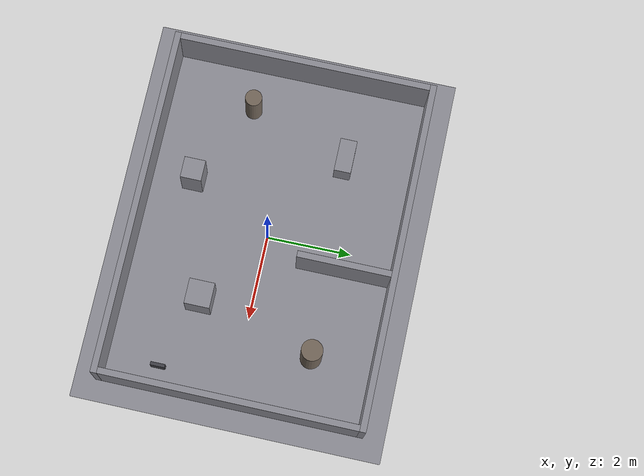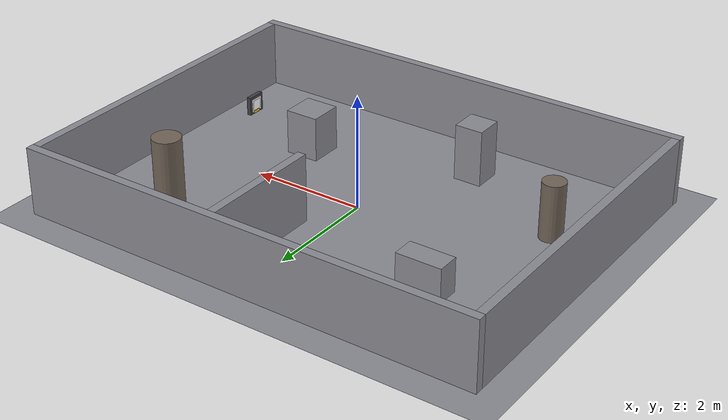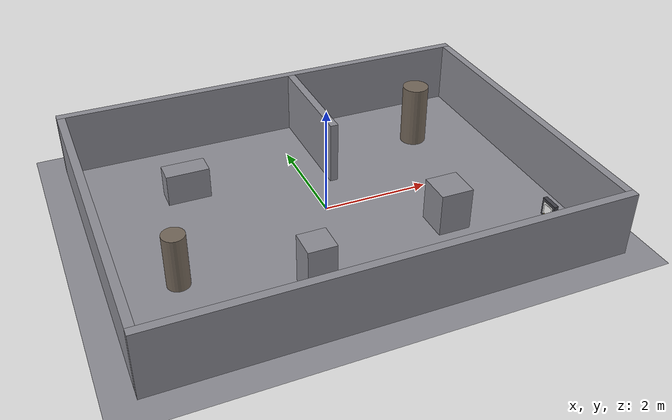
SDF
<?xml version="1.0" ?>
<sdf version="1.6">
  <world name="room_world">

    <light name="sun" type="directional">
      <cast_shadows>true</cast_shadows>
      <pose>0 0 10 0 0 0</pose>
      <diffuse>0.9 0.9 0.9 1</diffuse>
      <specular>0.2 0.2 0.2 1</specular>
      <attenuation><range>1000</range><constant>0.9</constant><linear>0.01</linear><quadratic>0.001</quadratic></attenuation>
      <direction>-0.4 0.3 -0.9</direction>
    </light>

    <model name="ground_plane">
      <static>true</static>
      <link name="link">
        <collision name="collision">
          <geometry><plane><normal>0 0 1</normal><size>100 100</size></plane></geometry>
          <surface>
            <friction><ode><mu>1.0</mu><mu2>1.0</mu2></ode></friction>
            <contact><ode><kp>1e6</kp><kd>100</kd><max_vel>0.1</max_vel><min_depth>0.001</min_depth></ode></contact>
          </surface>
        </collision>
        <visual name="visual">
          <cast_shadows>false</cast_shadows>
          <geometry><plane><normal>0 0 1</normal><size>100 100</size></plane></geometry>
          <material><ambient>0.35 0.35 0.38 1</ambient><diffuse>0.55 0.55 0.58 1</diffuse></material>
        </visual>
      </link>
    </model>

    <model name="wall_north">
      <static>true</static>
      <link name="link">
        <pose>0.0000 3.0750 0.6000 0 0 0</pose>
        <collision name="collision">
          <geometry><box><size>8.3000 0.1500 1.2000</size></box></geometry>
          <surface><friction><ode><mu>0.8</mu><mu2>0.8</mu2></ode></friction></surface>
        </collision>
        <visual name="visual">
          <geometry><box><size>8.3000 0.1500 1.2000</size></box></geometry>
          <material>
            <ambient>0.28 0.28 0.29 1</ambient>
            <diffuse>0.55 0.55 0.58 1</diffuse>
          </material>
        </visual>
      </link>
    </model>
    <model name="wall_south">
      <static>true</static>
      <link name="link">
        <pose>0.0000 -3.0750 0.6000 0 0 0</pose>
        <collision name="collision">
          <geometry><box><size>8.3000 0.1500 1.2000</size></box></geometry>
          <surface><friction><ode><mu>0.8</mu><mu2>0.8</mu2></ode></friction></surface>
        </collision>
        <visual name="visual">
          <geometry><box><size>8.3000 0.1500 1.2000</size></box></geometry>
          <material>
            <ambient>0.28 0.28 0.29 1</ambient>
            <diffuse>0.55 0.55 0.58 1</diffuse>
          </material>
        </visual>
      </link>
    </model>
    <model name="wall_east">
      <static>true</static>
      <link name="link">
        <pose>4.0750 0.0000 0.6000 0 0 0</pose>
        <collision name="collision">
          <geometry><box><size>0.1500 6.0000 1.2000</size></box></geometry>
          <surface><friction><ode><mu>0.8</mu><mu2>0.8</mu2></ode></friction></surface>
        </collision>
        <visual name="visual">
          <geometry><box><size>0.1500 6.0000 1.2000</size></box></geometry>
          <material>
            <ambient>0.28 0.28 0.29 1</ambient>
            <diffuse>0.55 0.55 0.58 1</diffuse>
          </material>
        </visual>
      </link>
    </model>
    <model name="wall_west">
      <static>true</static>
      <link name="link">
        <pose>-4.0750 0.0000 0.6000 0 0 0</pose>
        <collision name="collision">
          <geometry><box><size>0.1500 6.0000 1.2000</size></box></geometry>
          <surface><friction><ode><mu>0.8</mu><mu2>0.8</mu2></ode></friction></surface>
        </collision>
        <visual name="visual">
          <geometry><box><size>0.1500 6.0000 1.2000</size></box></geometry>
          <material>
            <ambient>0.28 0.28 0.29 1</ambient>
            <diffuse>0.55 0.55 0.58 1</diffuse>
          </material>
        </visual>
      </link>
    </model>
    <model name="partition">
      <static>true</static>
      <link name="link">
        <pose>0.5000 1.9000 0.6000 0 0 0</pose>
        <collision name="collision">
          <geometry><box><size>0.1500 2.2000 1.2000</size></box></geometry>
          <surface><friction><ode><mu>0.8</mu><mu2>0.8</mu2></ode></friction></surface>
        </collision>
        <visual name="visual">
          <geometry><box><size>0.1500 2.2000 1.2000</size></box></geometry>
          <material>
            <ambient>0.28 0.28 0.29 1</ambient>
            <diffuse>0.55 0.55 0.58 1</diffuse>
          </material>
        </visual>
      </link>
    </model>
    <model name="crate_a">
      <static>true</static>
      <link name="link">
        <pose>1.8000 -1.2000 0.4000 0 0 0</pose>
        <collision name="collision">
          <geometry><box><size>0.6000 0.6000 0.8000</size></box></geometry>
          <surface><friction><ode><mu>0.8</mu><mu2>0.8</mu2></ode></friction></surface>
        </collision>
        <visual name="visual">
          <geometry><box><size>0.6000 0.6000 0.8000</size></box></geometry>
          <material>
            <ambient>0.28 0.28 0.29 1</ambient>
            <diffuse>0.55 0.55 0.58 1</diffuse>
          </material>
        </visual>
      </link>
    </model>
    <model name="crate_b">
      <static>true</static>
      <link name="link">
        <pose>-2.2000 1.4000 0.3000 0 0 0</pose>
        <collision name="collision">
          <geometry><box><size>0.8000 0.4000 0.6000</size></box></geometry>
          <surface><friction><ode><mu>0.8</mu><mu2>0.8</mu2></ode></friction></surface>
        </collision>
        <visual name="visual">
          <geometry><box><size>0.8000 0.4000 0.6000</size></box></geometry>
          <material>
            <ambient>0.28 0.28 0.29 1</ambient>
            <diffuse>0.55 0.55 0.58 1</diffuse>
          </material>
        </visual>
      </link>
    </model>
    <model name="crate_c">
      <static>true</static>
      <link name="link">
        <pose>-1.0000 -2.0000 0.5000 0 0 0</pose>
        <collision name="collision">
          <geometry><box><size>0.5000 0.5000 1.0000</size></box></geometry>
          <surface><friction><ode><mu>0.8</mu><mu2>0.8</mu2></ode></friction></surface>
        </collision>
        <visual name="visual">
          <geometry><box><size>0.5000 0.5000 1.0000</size></box></geometry>
          <material>
            <ambient>0.28 0.28 0.29 1</ambient>
            <diffuse>0.55 0.55 0.58 1</diffuse>
          </material>
        </visual>
      </link>
    </model>
    <model name="pillar_a">
      <static>true</static>
      <link name="link">
        <pose>2.6000 1.6000 0.6000 0 0 0</pose>
        <collision name="collision">
          <geometry><cylinder><radius>0.2500</radius><length>1.2000</length></cylinder></geometry>
        </collision>
        <visual name="visual">
          <geometry><cylinder><radius>0.2500</radius><length>1.2000</length></cylinder></geometry>
          <material>
            <ambient>0.23 0.20 0.17 1</ambient>
            <diffuse>0.45 0.40 0.35 1</diffuse>
          </material>
        </visual>
      </link>
    </model>
    <model name="pillar_b">
      <static>true</static>
      <link name="link">
        <pose>-3.0000 -1.0000 0.5000 0 0 0</pose>
        <collision name="collision">
          <geometry><cylinder><radius>0.2000</radius><length>1.0000</length></cylinder></geometry>
        </collision>
        <visual name="visual">
          <geometry><cylinder><radius>0.2000</radius><length>1.0000</length></cylinder></geometry>
          <material>
            <ambient>0.23 0.20 0.17 1</ambient>
            <diffuse>0.45 0.40 0.35 1</diffuse>
          </material>
        </visual>
      </link>
    </model>

    <include>
      <uri>model://aruco_dock_station</uri>
      <name>docking_station</name>
      <pose>3.5500 -1.8000 0.0000 0.0000 0.0000 3.1416</pose>
    </include>

    <plugin name="gazebo_ros_state" filename="libgazebo_ros_state.so">
      <ros><namespace>/gazebo</namespace></ros>
      <update_rate>20.0</update_rate>
    </plugin>

    <scene>
      <ambient>0.5 0.5 0.5 1</ambient>
      <background>0.7 0.75 0.8 1</background>
      <shadows>true</shadows>
    </scene>

    <physics type="ode">
      <max_step_size>0.001</max_step_size>
      <real_time_factor>1</real_time_factor>
      <real_time_update_rate>1000</real_time_update_rate>
      <ode>
        <solver><type>quick</type><iters>75</iters><sor>1.3</sor></solver>
        <constraints>
          <cfm>0.0</cfm><erp>0.2</erp>
          <contact_max_correcting_vel>100.0</contact_max_correcting_vel>
          <contact_surface_layer>0.001</contact_surface_layer>
        </constraints>
      </ode>
    </physics>

    <gui fullscreen='0'>
      <camera name='user_camera'>
        <pose>-6.5 -6.0 6.0 0 0.62 0.75</pose>
        <view_controller>orbit</view_controller>
      </camera>
    </gui>
  </world>
</sdf>

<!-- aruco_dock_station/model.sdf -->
<sdf version="1.6">
  <model name="aruco_dock_station">
    <static>true</static>
    <link name="link">

      <!-- Dock post -->
      <visual name="dock_post_visual">
        <pose>0 0 0.17 0 0 0</pose>
        <geometry>
          <box><size>0.08 0.34 0.34</size></box>
        </geometry>
        <material>
          <ambient>0.15 0.15 0.17 1.0</ambient>
          <diffuse>0.25 0.25 0.28 1.0</diffuse>
          <specular>0.1 0.1 0.1 1.0</specular>
        </material>
      </visual>
      <collision name="dock_post_collision">
        <pose>0 0 0.17 0 0 0</pose>
        <geometry>
          <box><size>0.08 0.34 0.34</size></box>
        </geometry>
        <surface>
          <friction><ode><mu>0.8</mu><mu2>0.8</mu2></ode></friction>
        </surface>
      </collision>

      <!-- White backing board: gives the marker a clean quiet zone -->
      <visual name="marker_backing_visual">
        <pose>0.0425 0 0.162 0 0 0</pose>
        <geometry>
          <box><size>0.005 0.25 0.25</size></box>
        </geometry>
        <material>
          <ambient>0.9 0.9 0.9 1.0</ambient>
          <diffuse>1.0 1.0 1.0 1.0</diffuse>
        </material>
      </visual>

      <!-- Marker plate: 0.1875 m wide => 0.150 m of printed marker -->
      <visual name="aruco_marker_visual">
        <pose>0.0455 0 0.162 0 0 0</pose>
        <geometry>
          <box><size>0.002 0.1875 0.1875</size></box>
        </geometry>
        <material>
          <script>
            <uri>model://aruco_dock_station/materials/scripts</uri>
            <uri>model://aruco_dock_station/materials/textures</uri>
            <name>Aruco/Marker42</name>
          </script>
          <!-- Unlit-ish so the marker stays high contrast regardless of the sun angle -->
          <ambient>1 1 1 1</ambient>
          <diffuse>1 1 1 1</diffuse>
          <specular>0 0 0 1</specular>
        </material>
      </visual>

      <!-- Charging plate the robot noses up to -->
      <visual name="contact_plate_visual">
        <pose>0.0425 0 0.033 0 0 0</pose>
        <geometry>
          <box><size>0.006 0.16 0.05</size></box>
        </geometry>
        <material>
          <ambient>0.6 0.45 0.1 1.0</ambient>
          <diffuse>0.9 0.7 0.15 1.0</diffuse>
        </material>
      </visual>

    </link>
  </model>
</sdf>
